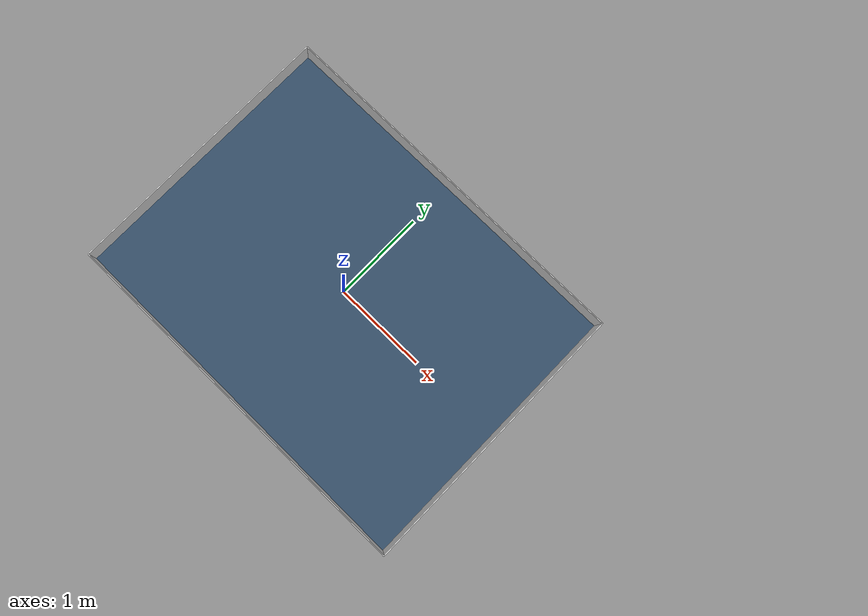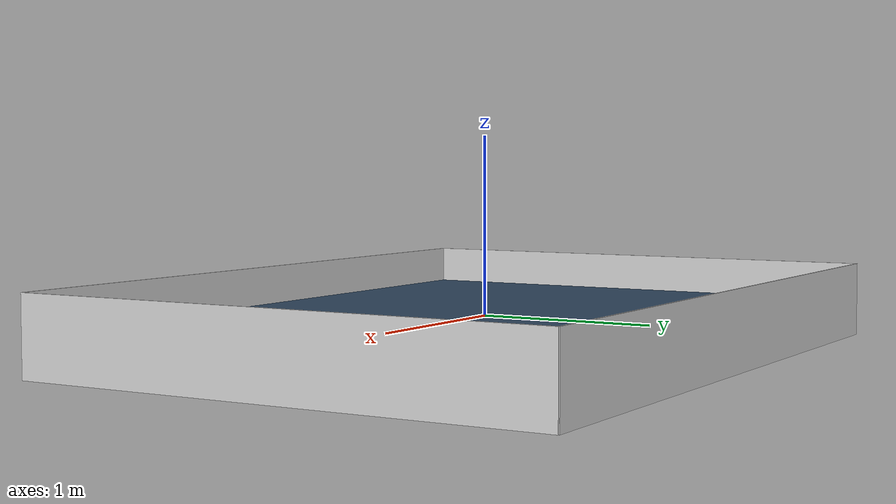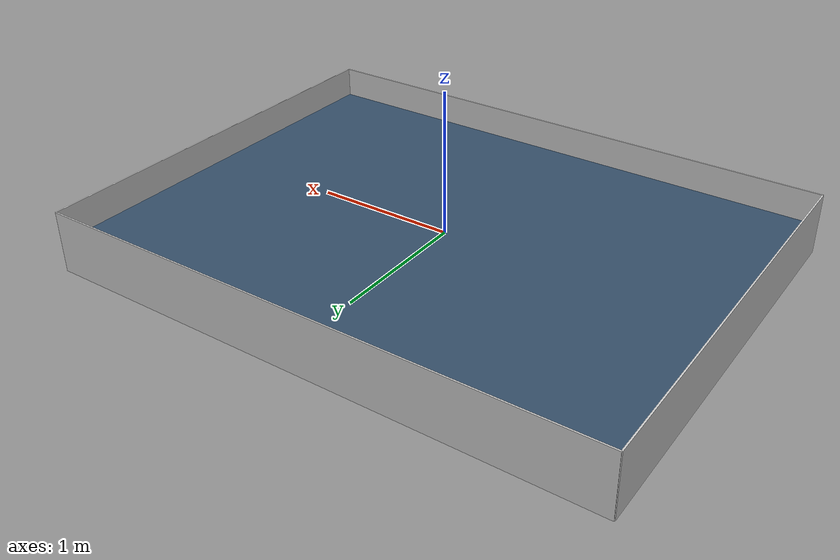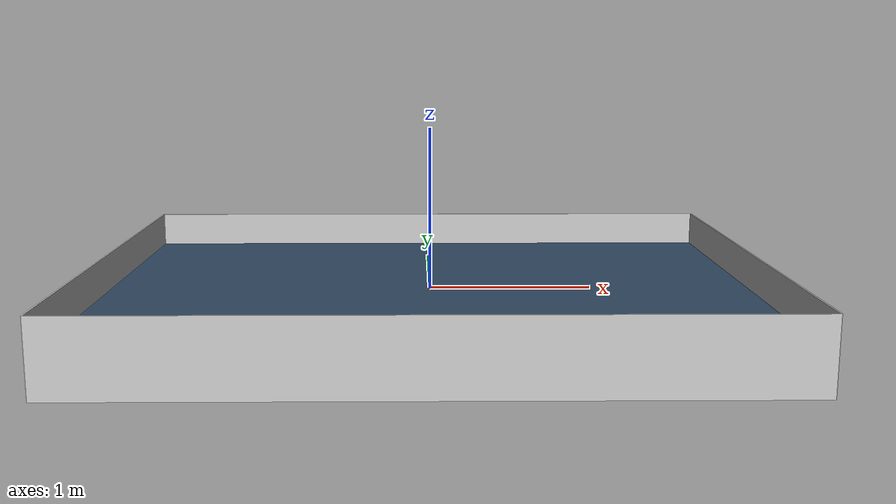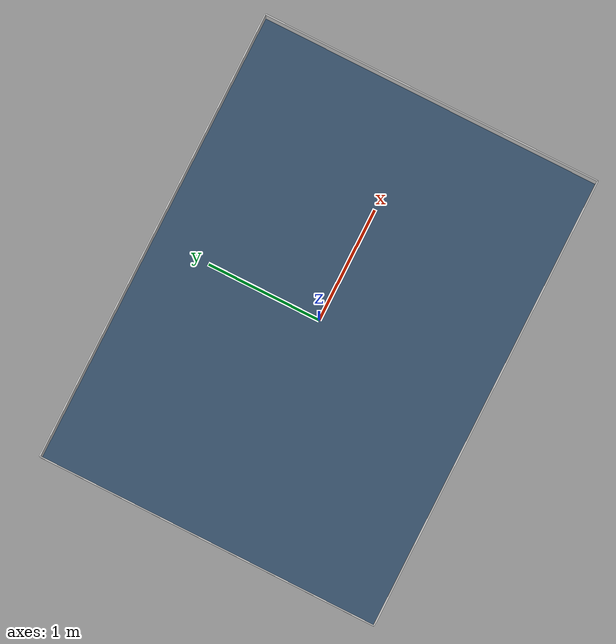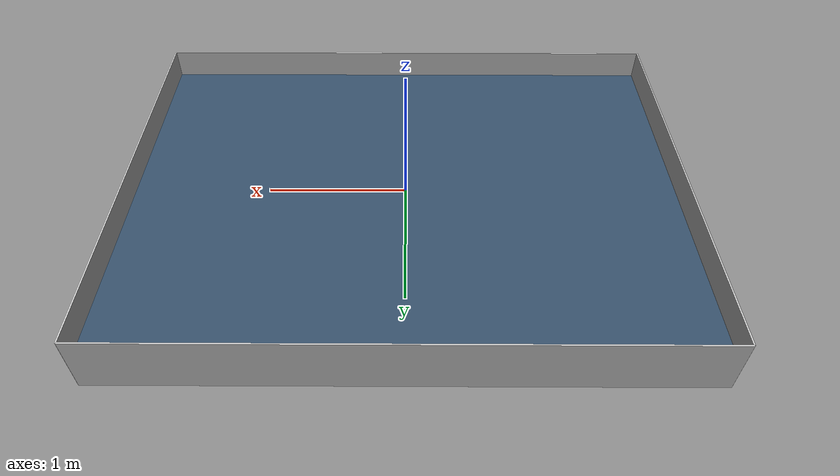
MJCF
<mujoco model="floor and sky">
    <!-- 시뮬레이션 옵션: 타임스텝, 중력, 적분 방식, 솔버 등 설정 -->
    <option timestep="0.001" gravity="0 0 -9.81" integrator="RK4" solver="PGS" iterations="200" tolerance="1e-8"/>

    <!-- 시각 효과: 헤드라이트, 헤이즈(안개) 색상, 환경광, 조명 각도 설정 -->
    <visual>
        <headlight diffuse="0.6 0.6 0.6" ambient="0.1 0.1 0.1" specular="0 0 0" />
        <rgba haze="0.15 0.25 0.35 1" />
        <global azimuth="120" elevation="-20" />
    </visual>

    <!-- 에셋 정의: 텍스처와 머티리얼 등 등록 -->
    <asset>
        <!-- 스카이박스(하늘 배경) 텍스처 -->
        <texture type="skybox" builtin="gradient" rgb1="0.1 0.2 0.3" rgb2="0 0 0" width="512" height="3072" />
        <!-- 바닥(체커무늬) 텍스처 및 머티리얼 정의 -->
        <texture type="2d" name="groundplane" builtin="checker" mark="edge" rgb1="0.3 0.4 0.5" rgb2="0.1 0.2 0.3" markrgb="0.8 0.8 0.8" width="300" height="300" />
        <material name="groundplane" texture="groundplane" texuniform="true" texrepeat="2 2" reflectance="0.2" />
    </asset>

    <!-- 월드(환경) 구성: 바닥, 벽, 조명 등 배치 -->
    <worldbody>
        <!-- 메인 라이트: 위쪽에서 아래로 비추는 방향성 광원 -->
        <light pos="0 0 3" dir="0 0 -1" directional="true" diffuse="1 1 1"/>

        <!-- 바닥 평면: 크기와 머티리얼 지정 -->
        <geom name="floor" size="2 1.5 0.05"  type="plane" material="groundplane" />

        <!-- 경기장 벽: 얇고 넓은 box geom, z축으로 0.22 높이까지 세움 -->
        <geom name="wall_front" type="box" pos="0 1.5 0.0" size="2 0.005 0.22" rgba="0.8 0.8 0.8 1"/>
        <geom name="wall_back" type="box" pos="0 -1.5 0.0" size="2 0.005 0.22" rgba="0.8 0.8 0.8 1"/>
        <geom name="wall_left" type="box" pos="-2 0 0.0" size="0.005 1.5 0.22" rgba="0.8 0.8 0.8 1"/>
        <geom name="wall_right"  type="box" pos="2 0 0.0" size="0.005 1.5 0.22" rgba="0.8 0.8 0.8 1"/>
    </worldbody>
</mujoco>
